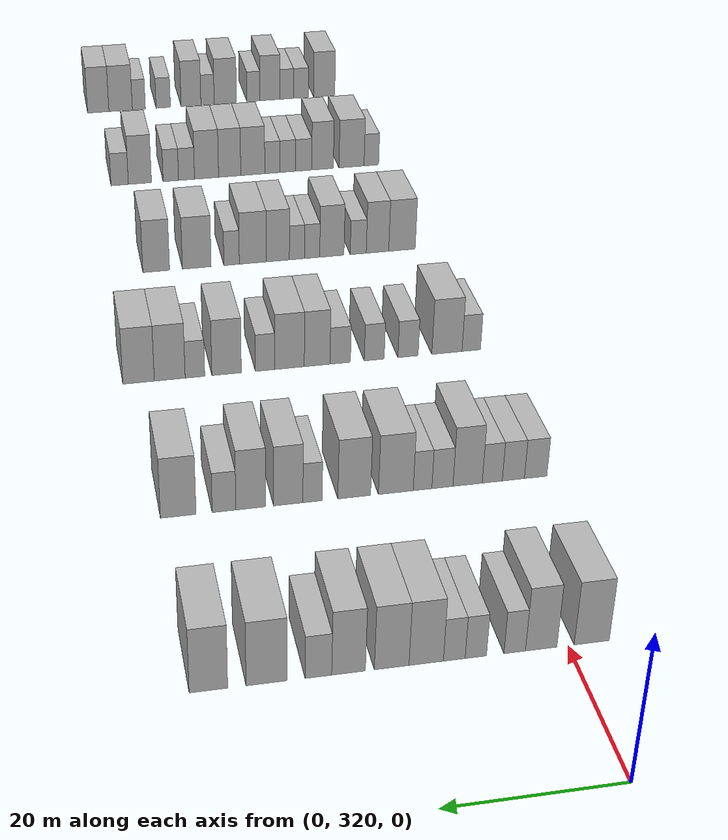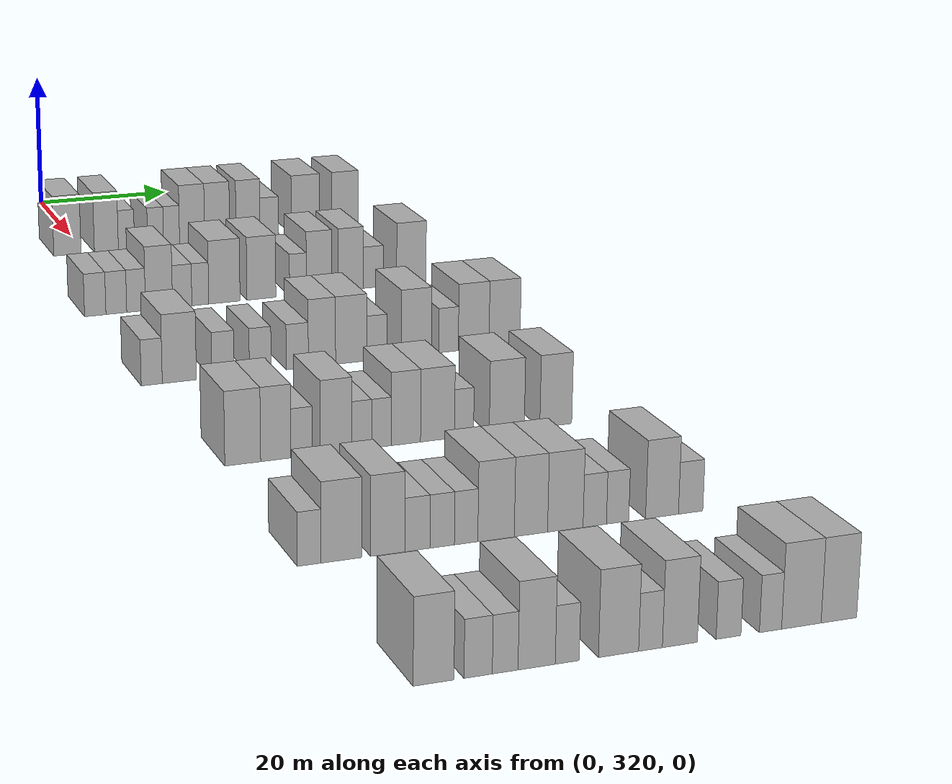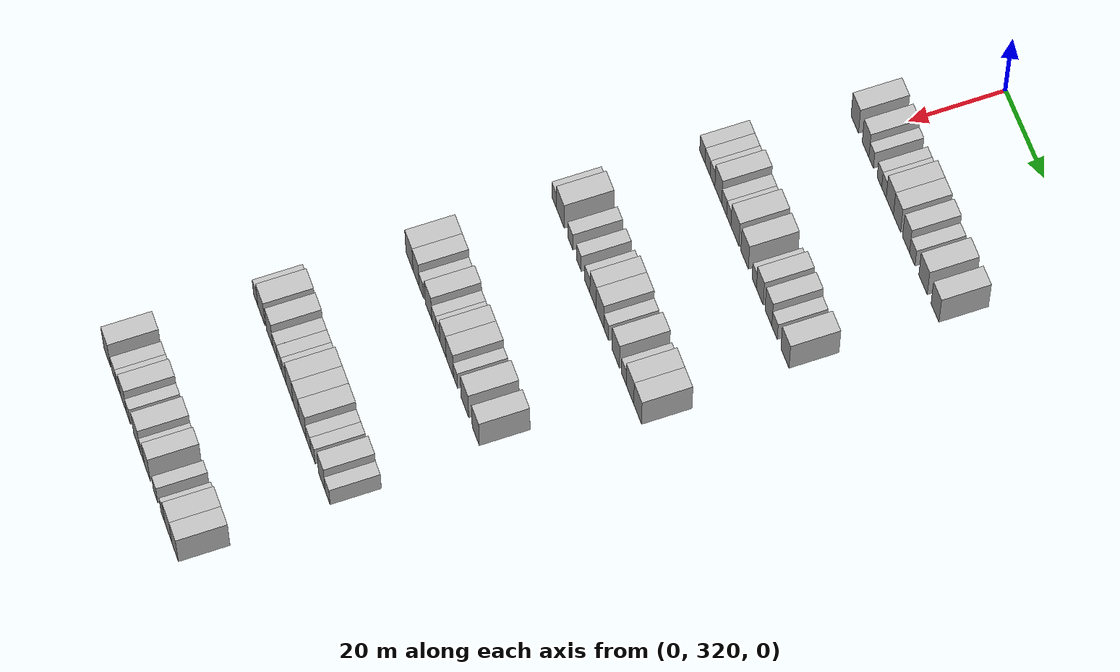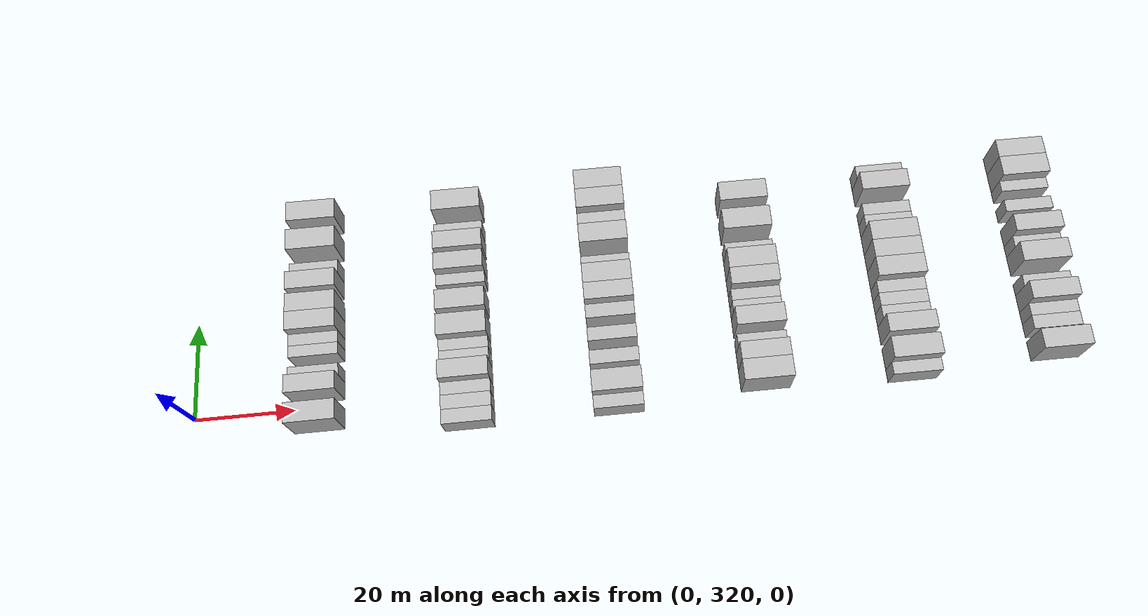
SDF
<sdf version="1.6">
 <world name="default">
  <model name="building_191">
   <static>1</static>
   <pose>25.0000 317.2593 0 0.000000 0.000000 0.000000</pose>
   <link name="link">
    <pose>0 0 4.50 0 0 0</pose>
    <collision name="collision"><geometry><box><size>10.0000 4.0689 9.0000</size></box></geometry></collision>
    <visual name="visual">
     <cast_shadows>0</cast_shadows>
     <geometry><box><size>10.0000 4.0689 9.0000</size></box></geometry>
     <material>
      <script>
       <uri>model://HANNAS_wall/materials/scripts</uri>
       <uri>model://HANNAS_wall/materials/textures</uri>
       <name>vrc/HANNAS_wall</name>
      </script>
     </material>
    </visual>
   </link>
  </model>
  <model name="building_192">
   <static>1</static>
   <pose>25.0000 323.1039 0 0.000000 0.000000 0.000000</pose>
   <link name="link">
    <pose>0 0 4.50 0 0 0</pose>
    <collision name="collision"><geometry><box><size>10.0000 3.6204 9.0000</size></box></geometry></collision>
    <visual name="visual">
     <cast_shadows>0</cast_shadows>
     <geometry><box><size>10.0000 3.6204 9.0000</size></box></geometry>
     <material>
      <script>
       <uri>model://HANNAS_wall/materials/scripts</uri>
       <uri>model://HANNAS_wall/materials/textures</uri>
       <name>vrc/HANNAS_wall</name>
      </script>
     </material>
    </visual>
   </link>
  </model>
  <model name="building_193">
   <static>1</static>
   <pose>25.0000 326.1413 0 0.000000 0.000000 0.000000</pose>
   <link name="link">
    <pose>0 0 3.00 0 0 0</pose>
    <collision name="collision"><geometry><box><size>10.0000 2.4543 6.0000</size></box></geometry></collision>
    <visual name="visual">
     <cast_shadows>0</cast_shadows>
     <geometry><box><size>10.0000 2.4543 6.0000</size></box></geometry>
     <material>
      <script>
       <uri>model://HANNAS_wall/materials/scripts</uri>
       <uri>model://HANNAS_wall/materials/textures</uri>
       <name>vrc/HANNAS_wall</name>
      </script>
     </material>
    </visual>
   </link>
  </model>
  <model name="building_194">
   <static>1</static>
   <pose>25.0000 330.5818 0 0.000000 0.000000 0.000000</pose>
   <link name="link">
    <pose>0 0 3.00 0 0 0</pose>
    <collision name="collision"><geometry><box><size>10.0000 2.4268 6.0000</size></box></geometry></collision>
    <visual name="visual">
     <cast_shadows>0</cast_shadows>
     <geometry><box><size>10.0000 2.4268 6.0000</size></box></geometry>
     <material>
      <script>
       <uri>model://HANNAS_wall/materials/scripts</uri>
       <uri>model://HANNAS_wall/materials/textures</uri>
       <name>vrc/HANNAS_wall</name>
      </script>
     </material>
    </visual>
   </link>
  </model>
  <model name="building_195">
   <static>1</static>
   <pose>25.0000 333.0260 0 0.000000 0.000000 0.000000</pose>
   <link name="link">
    <pose>0 0 3.00 0 0 0</pose>
    <collision name="collision"><geometry><box><size>10.0000 2.4615 6.0000</size></box></geometry></collision>
    <visual name="visual">
     <cast_shadows>0</cast_shadows>
     <geometry><box><size>10.0000 2.4615 6.0000</size></box></geometry>
     <material>
      <script>
       <uri>model://HANNAS_wall/materials/scripts</uri>
       <uri>model://HANNAS_wall/materials/textures</uri>
       <name>vrc/HANNAS_wall</name>
      </script>
     </material>
    </visual>
   </link>
  </model>
  <model name="building_196">
   <static>1</static>
   <pose>25.0000 336.1932 0 0.000000 0.000000 0.000000</pose>
   <link name="link">
    <pose>0 0 4.50 0 0 0</pose>
    <collision name="collision"><geometry><box><size>10.0000 3.8728 9.0000</size></box></geometry></collision>
    <visual name="visual">
     <cast_shadows>0</cast_shadows>
     <geometry><box><size>10.0000 3.8728 9.0000</size></box></geometry>
     <material>
      <script>
       <uri>model://HANNAS_wall/materials/scripts</uri>
       <uri>model://HANNAS_wall/materials/textures</uri>
       <name>vrc/HANNAS_wall</name>
      </script>
     </material>
    </visual>
   </link>
  </model>
  <model name="building_197">
   <static>1</static>
   <pose>25.0000 340.0708 0 0.000000 0.000000 0.000000</pose>
   <link name="link">
    <pose>0 0 4.50 0 0 0</pose>
    <collision name="collision"><geometry><box><size>10.0000 3.8825 9.0000</size></box></geometry></collision>
    <visual name="visual">
     <cast_shadows>0</cast_shadows>
     <geometry><box><size>10.0000 3.8825 9.0000</size></box></geometry>
     <material>
      <script>
       <uri>model://HANNAS_wall/materials/scripts</uri>
       <uri>model://HANNAS_wall/materials/textures</uri>
       <name>vrc/HANNAS_wall</name>
      </script>
     </material>
    </visual>
   </link>
  </model>
  <model name="building_198">
   <static>1</static>
   <pose>25.0000 344.8836 0 0.000000 0.000000 0.000000</pose>
   <link name="link">
    <pose>0 0 4.50 0 0 0</pose>
    <collision name="collision"><geometry><box><size>10.0000 3.7432 9.0000</size></box></geometry></collision>
    <visual name="visual">
     <cast_shadows>0</cast_shadows>
     <geometry><box><size>10.0000 3.7432 9.0000</size></box></geometry>
     <material>
      <script>
       <uri>model://HANNAS_wall/materials/scripts</uri>
       <uri>model://HANNAS_wall/materials/textures</uri>
       <name>vrc/HANNAS_wall</name>
      </script>
     </material>
    </visual>
   </link>
  </model>
  <model name="building_199">
   <static>1</static>
   <pose>25.0000 348.2216 0 0.000000 0.000000 0.000000</pose>
   <link name="link">
    <pose>0 0 3.00 0 0 0</pose>
    <collision name="collision"><geometry><box><size>10.0000 2.9327 6.0000</size></box></geometry></collision>
    <visual name="visual">
     <cast_shadows>0</cast_shadows>
     <geometry><box><size>10.0000 2.9327 6.0000</size></box></geometry>
     <material>
      <script>
       <uri>model://HANNAS_wall/materials/scripts</uri>
       <uri>model://HANNAS_wall/materials/textures</uri>
       <name>vrc/HANNAS_wall</name>
      </script>
     </material>
    </visual>
   </link>
  </model>
  <model name="building_200">
   <static>1</static>
   <pose>25.0000 353.9241 0 0.000000 0.000000 0.000000</pose>
   <link name="link">
    <pose>0 0 4.50 0 0 0</pose>
    <collision name="collision"><geometry><box><size>10.0000 4.4724 9.0000</size></box></geometry></collision>
    <visual name="visual">
     <cast_shadows>0</cast_shadows>
     <geometry><box><size>10.0000 4.4724 9.0000</size></box></geometry>
     <material>
      <script>
       <uri>model://HANNAS_wall/materials/scripts</uri>
       <uri>model://HANNAS_wall/materials/textures</uri>
       <name>vrc/HANNAS_wall</name>
      </script>
     </material>
    </visual>
   </link>
  </model>
  <model name="building_201">
   <static>1</static>
   <pose>25.0000 360.2449 0 0.000000 0.000000 0.000000</pose>
   <link name="link">
    <pose>0 0 4.50 0 0 0</pose>
    <collision name="collision"><geometry><box><size>10.0000 4.1690 9.0000</size></box></geometry></collision>
    <visual name="visual">
     <cast_shadows>0</cast_shadows>
     <geometry><box><size>10.0000 4.1690 9.0000</size></box></geometry>
     <material>
      <script>
       <uri>model://HANNAS_wall/materials/scripts</uri>
       <uri>model://HANNAS_wall/materials/textures</uri>
       <name>vrc/HANNAS_wall</name>
      </script>
     </material>
    </visual>
   </link>
  </model>
  <model name="building_416">
   <static>1</static>
   <pose>55.0000 314.2554 0 0.000000 0.000000 0.000000</pose>
   <link name="link">
    <pose>0 0 3.00 0 0 0</pose>
    <collision name="collision"><geometry><box><size>10.0000 2.9622 6.0000</size></box></geometry></collision>
    <visual name="visual">
     <cast_shadows>0</cast_shadows>
     <geometry><box><size>10.0000 2.9622 6.0000</size></box></geometry>
     <material>
      <script>
       <uri>model://HANNAS_wall/materials/scripts</uri>
       <uri>model://HANNAS_wall/materials/textures</uri>
       <name>vrc/HANNAS_wall</name>
      </script>
     </material>
    </visual>
   </link>
  </model>
  <model name="building_417">
   <static>1</static>
   <pose>55.0000 317.1881 0 0.000000 0.000000 0.000000</pose>
   <link name="link">
    <pose>0 0 3.00 0 0 0</pose>
    <collision name="collision"><geometry><box><size>10.0000 2.9033 6.0000</size></box></geometry></collision>
    <visual name="visual">
     <cast_shadows>0</cast_shadows>
     <geometry><box><size>10.0000 2.9033 6.0000</size></box></geometry>
     <material>
      <script>
       <uri>model://HANNAS_wall/materials/scripts</uri>
       <uri>model://HANNAS_wall/materials/textures</uri>
       <name>vrc/HANNAS_wall</name>
      </script>
     </material>
    </visual>
   </link>
  </model>
  <model name="building_418">
   <static>1</static>
   <pose>55.0000 319.9535 0 0.000000 0.000000 0.000000</pose>
   <link name="link">
    <pose>0 0 3.00 0 0 0</pose>
    <collision name="collision"><geometry><box><size>10.0000 2.6275 6.0000</size></box></geometry></collision>
    <visual name="visual">
     <cast_shadows>0</cast_shadows>
     <geometry><box><size>10.0000 2.6275 6.0000</size></box></geometry>
     <material>
      <script>
       <uri>model://HANNAS_wall/materials/scripts</uri>
       <uri>model://HANNAS_wall/materials/textures</uri>
       <name>vrc/HANNAS_wall</name>
      </script>
     </material>
    </visual>
   </link>
  </model>
  <model name="building_419">
   <static>1</static>
   <pose>55.0000 323.1736 0 0.000000 0.000000 0.000000</pose>
   <link name="link">
    <pose>0 0 4.50 0 0 0</pose>
    <collision name="collision"><geometry><box><size>10.0000 3.8126 9.0000</size></box></geometry></collision>
    <visual name="visual">
     <cast_shadows>0</cast_shadows>
     <geometry><box><size>10.0000 3.8126 9.0000</size></box></geometry>
     <material>
      <script>
       <uri>model://HANNAS_wall/materials/scripts</uri>
       <uri>model://HANNAS_wall/materials/textures</uri>
       <name>vrc/HANNAS_wall</name>
      </script>
     </material>
    </visual>
   </link>
  </model>
  <model name="building_420">
   <static>1</static>
   <pose>55.0000 326.4484 0 0.000000 0.000000 0.000000</pose>
   <link name="link">
    <pose>0 0 3.00 0 0 0</pose>
    <collision name="collision"><geometry><box><size>10.0000 2.7370 6.0000</size></box></geometry></collision>
    <visual name="visual">
     <cast_shadows>0</cast_shadows>
     <geometry><box><size>10.0000 2.7370 6.0000</size></box></geometry>
     <material>
      <script>
       <uri>model://HANNAS_wall/materials/scripts</uri>
       <uri>model://HANNAS_wall/materials/textures</uri>
       <name>vrc/HANNAS_wall</name>
      </script>
     </material>
    </visual>
   </link>
  </model>
  <model name="building_421">
   <static>1</static>
   <pose>55.0000 329.0197 0 0.000000 0.000000 0.000000</pose>
   <link name="link">
    <pose>0 0 3.00 0 0 0</pose>
    <collision name="collision"><geometry><box><size>10.0000 2.4057 6.0000</size></box></geometry></collision>
    <visual name="visual">
     <cast_shadows>0</cast_shadows>
     <geometry><box><size>10.0000 2.4057 6.0000</size></box></geometry>
     <material>
      <script>
       <uri>model://HANNAS_wall/materials/scripts</uri>
       <uri>model://HANNAS_wall/materials/textures</uri>
       <name>vrc/HANNAS_wall</name>
      </script>
     </material>
    </visual>
   </link>
  </model>
  <model name="building_422">
   <static>1</static>
   <pose>55.0000 332.4609 0 0.000000 0.000000 0.000000</pose>
   <link name="link">
    <pose>0 0 4.50 0 0 0</pose>
    <collision name="collision"><geometry><box><size>10.0000 4.4768 9.0000</size></box></geometry></collision>
    <visual name="visual">
     <cast_shadows>0</cast_shadows>
     <geometry><box><size>10.0000 4.4768 9.0000</size></box></geometry>
     <material>
      <script>
       <uri>model://HANNAS_wall/materials/scripts</uri>
       <uri>model://HANNAS_wall/materials/textures</uri>
       <name>vrc/HANNAS_wall</name>
      </script>
     </material>
    </visual>
   </link>
  </model>
  <model name="building_423">
   <static>1</static>
   <pose>55.0000 337.7897 0 0.000000 0.000000 0.000000</pose>
   <link name="link">
    <pose>0 0 4.50 0 0 0</pose>
    <collision name="collision"><geometry><box><size>10.0000 4.1807 9.0000</size></box></geometry></collision>
    <visual name="visual">
     <cast_shadows>0</cast_shadows>
     <geometry><box><size>10.0000 4.1807 9.0000</size></box></geometry>
     <material>
      <script>
       <uri>model://HANNAS_wall/materials/scripts</uri>
       <uri>model://HANNAS_wall/materials/textures</uri>
       <name>vrc/HANNAS_wall</name>
      </script>
     </material>
    </visual>
   </link>
  </model>
  <model name="building_424">
   <static>1</static>
   <pose>55.0000 343.1002 0 0.000000 0.000000 0.000000</pose>
   <link name="link">
    <pose>0 0 3.00 0 0 0</pose>
    <collision name="collision"><geometry><box><size>10.0000 2.4403 6.0000</size></box></geometry></collision>
    <visual name="visual">
     <cast_shadows>0</cast_shadows>
     <geometry><box><size>10.0000 2.4403 6.0000</size></box></geometry>
     <material>
      <script>
       <uri>model://HANNAS_wall/materials/scripts</uri>
       <uri>model://HANNAS_wall/materials/textures</uri>
       <name>vrc/HANNAS_wall</name>
      </script>
     </material>
    </visual>
   </link>
  </model>
  <model name="building_425">
   <static>1</static>
   <pose>55.0000 346.1621 0 0.000000 0.000000 0.000000</pose>
   <link name="link">
    <pose>0 0 4.50 0 0 0</pose>
    <collision name="collision"><geometry><box><size>10.0000 3.6836 9.0000</size></box></geometry></collision>
    <visual name="visual">
     <cast_shadows>0</cast_shadows>
     <geometry><box><size>10.0000 3.6836 9.0000</size></box></geometry>
     <material>
      <script>
       <uri>model://HANNAS_wall/materials/scripts</uri>
       <uri>model://HANNAS_wall/materials/textures</uri>
       <name>vrc/HANNAS_wall</name>
      </script>
     </material>
    </visual>
   </link>
  </model>
  <model name="building_426">
   <static>1</static>
   <pose>55.0000 350.8682 0 0.000000 0.000000 0.000000</pose>
   <link name="link">
    <pose>0 0 4.50 0 0 0</pose>
    <collision name="collision"><geometry><box><size>10.0000 3.7286 9.0000</size></box></geometry></collision>
    <visual name="visual">
     <cast_shadows>0</cast_shadows>
     <geometry><box><size>10.0000 3.7286 9.0000</size></box></geometry>
     <material>
      <script>
       <uri>model://HANNAS_wall/materials/scripts</uri>
       <uri>model://HANNAS_wall/materials/textures</uri>
       <name>vrc/HANNAS_wall</name>
      </script>
     </material>
    </visual>
   </link>
  </model>
  <model name="building_427">
   <static>1</static>
   <pose>55.0000 354.2079 0 0.000000 0.000000 0.000000</pose>
   <link name="link">
    <pose>0 0 3.00 0 0 0</pose>
    <collision name="collision"><geometry><box><size>10.0000 2.9508 6.0000</size></box></geometry></collision>
    <visual name="visual">
     <cast_shadows>0</cast_shadows>
     <geometry><box><size>10.0000 2.9508 6.0000</size></box></geometry>
     <material>
      <script>
       <uri>model://HANNAS_wall/materials/scripts</uri>
       <uri>model://HANNAS_wall/materials/textures</uri>
       <name>vrc/HANNAS_wall</name>
      </script>
     </material>
    </visual>
   </link>
  </model>
  <model name="building_428">
   <static>1</static>
   <pose>55.0000 359.8865 0 0.000000 0.000000 0.000000</pose>
   <link name="link">
    <pose>0 0 4.50 0 0 0</pose>
    <collision name="collision"><geometry><box><size>10.0000 4.4065 9.0000</size></box></geometry></collision>
    <visual name="visual">
     <cast_shadows>0</cast_shadows>
     <geometry><box><size>10.0000 4.4065 9.0000</size></box></geometry>
     <material>
      <script>
       <uri>model://HANNAS_wall/materials/scripts</uri>
       <uri>model://HANNAS_wall/materials/textures</uri>
       <name>vrc/HANNAS_wall</name>
      </script>
     </material>
    </visual>
   </link>
  </model>
  <model name="building_643">
   <static>1</static>
   <pose>85.0000 314.3011 0 0.000000 0.000000 0.000000</pose>
   <link name="link">
    <pose>0 0 3.00 0 0 0</pose>
    <collision name="collision"><geometry><box><size>10.0000 2.7082 6.0000</size></box></geometry></collision>
    <visual name="visual">
     <cast_shadows>0</cast_shadows>
     <geometry><box><size>10.0000 2.7082 6.0000</size></box></geometry>
     <material>
      <script>
       <uri>model://HANNAS_wall/materials/scripts</uri>
       <uri>model://HANNAS_wall/materials/textures</uri>
       <name>vrc/HANNAS_wall</name>
      </script>
     </material>
    </visual>
   </link>
  </model>
  <model name="building_644">
   <static>1</static>
   <pose>85.0000 317.8653 0 0.000000 0.000000 0.000000</pose>
   <link name="link">
    <pose>0 0 4.50 0 0 0</pose>
    <collision name="collision"><geometry><box><size>10.0000 4.4202 9.0000</size></box></geometry></collision>
    <visual name="visual">
     <cast_shadows>0</cast_shadows>
     <geometry><box><size>10.0000 4.4202 9.0000</size></box></geometry>
     <material>
      <script>
       <uri>model://HANNAS_wall/materials/scripts</uri>
       <uri>model://HANNAS_wall/materials/textures</uri>
       <name>vrc/HANNAS_wall</name>
      </script>
     </material>
    </visual>
   </link>
  </model>
  <model name="building_645">
   <static>1</static>
   <pose>85.0000 323.5443 0 0.000000 0.000000 0.000000</pose>
   <link name="link">
    <pose>0 0 3.00 0 0 0</pose>
    <collision name="collision"><geometry><box><size>10.0000 2.9379 6.0000</size></box></geometry></collision>
    <visual name="visual">
     <cast_shadows>0</cast_shadows>
     <geometry><box><size>10.0000 2.9379 6.0000</size></box></geometry>
     <material>
      <script>
       <uri>model://HANNAS_wall/materials/scripts</uri>
       <uri>model://HANNAS_wall/materials/textures</uri>
       <name>vrc/HANNAS_wall</name>
      </script>
     </material>
    </visual>
   </link>
  </model>
  <model name="building_646">
   <static>1</static>
   <pose>85.0000 328.4490 0 0.000000 0.000000 0.000000</pose>
   <link name="link">
    <pose>0 0 3.00 0 0 0</pose>
    <collision name="collision"><geometry><box><size>10.0000 2.8715 6.0000</size></box></geometry></collision>
    <visual name="visual">
     <cast_shadows>0</cast_shadows>
     <geometry><box><size>10.0000 2.8715 6.0000</size></box></geometry>
     <material>
      <script>
       <uri>model://HANNAS_wall/materials/scripts</uri>
       <uri>model://HANNAS_wall/materials/textures</uri>
       <name>vrc/HANNAS_wall</name>
      </script>
     </material>
    </visual>
   </link>
  </model>
  <model name="building_647">
   <static>1</static>
   <pose>85.0000 333.3624 0 0.000000 0.000000 0.000000</pose>
   <link name="link">
    <pose>0 0 3.00 0 0 0</pose>
    <collision name="collision"><geometry><box><size>10.0000 2.9554 6.0000</size></box></geometry></collision>
    <visual name="visual">
     <cast_shadows>0</cast_shadows>
     <geometry><box><size>10.0000 2.9554 6.0000</size></box></geometry>
     <material>
      <script>
       <uri>model://HANNAS_wall/materials/scripts</uri>
       <uri>model://HANNAS_wall/materials/textures</uri>
       <name>vrc/HANNAS_wall</name>
      </script>
     </material>
    </visual>
   </link>
  </model>
  <model name="building_648">
   <static>1</static>
   <pose>85.0000 336.6692 0 0.000000 0.000000 0.000000</pose>
   <link name="link">
    <pose>0 0 4.50 0 0 0</pose>
    <collision name="collision"><geometry><box><size>10.0000 3.6582 9.0000</size></box></geometry></collision>
    <visual name="visual">
     <cast_shadows>0</cast_shadows>
     <geometry><box><size>10.0000 3.6582 9.0000</size></box></geometry>
     <material>
      <script>
       <uri>model://HANNAS_wall/materials/scripts</uri>
       <uri>model://HANNAS_wall/materials/textures</uri>
       <name>vrc/HANNAS_wall</name>
      </script>
     </material>
    </visual>
   </link>
  </model>
  <model name="building_649">
   <static>1</static>
   <pose>85.0000 340.5995 0 0.000000 0.000000 0.000000</pose>
   <link name="link">
    <pose>0 0 4.50 0 0 0</pose>
    <collision name="collision"><geometry><box><size>10.0000 4.2025 9.0000</size></box></geometry></collision>
    <visual name="visual">
     <cast_shadows>0</cast_shadows>
     <geometry><box><size>10.0000 4.2025 9.0000</size></box></geometry>
     <material>
      <script>
       <uri>model://HANNAS_wall/materials/scripts</uri>
       <uri>model://HANNAS_wall/materials/textures</uri>
       <name>vrc/HANNAS_wall</name>
      </script>
     </material>
    </visual>
   </link>
  </model>
  <model name="building_650">
   <static>1</static>
   <pose>85.0000 344.0637 0 0.000000 0.000000 0.000000</pose>
   <link name="link">
    <pose>0 0 3.00 0 0 0</pose>
    <collision name="collision"><geometry><box><size>10.0000 2.7259 6.0000</size></box></geometry></collision>
    <visual name="visual">
     <cast_shadows>0</cast_shadows>
     <geometry><box><size>10.0000 2.7259 6.0000</size></box></geometry>
     <material>
      <script>
       <uri>model://HANNAS_wall/materials/scripts</uri>
       <uri>model://HANNAS_wall/materials/textures</uri>
       <name>vrc/HANNAS_wall</name>
      </script>
     </material>
    </visual>
   </link>
  </model>
  <model name="building_651">
   <static>1</static>
   <pose>85.0000 349.4962 0 0.000000 0.000000 0.000000</pose>
   <link name="link">
    <pose>0 0 4.50 0 0 0</pose>
    <collision name="collision"><geometry><box><size>10.0000 4.1391 9.0000</size></box></geometry></collision>
    <visual name="visual">
     <cast_shadows>0</cast_shadows>
     <geometry><box><size>10.0000 4.1391 9.0000</size></box></geometry>
     <material>
      <script>
       <uri>model://HANNAS_wall/materials/scripts</uri>
       <uri>model://HANNAS_wall/materials/textures</uri>
       <name>vrc/HANNAS_wall</name>
      </script>
     </material>
    </visual>
   </link>
  </model>
  <model name="building_652">
   <static>1</static>
   <pose>85.0000 353.9342 0 0.000000 0.000000 0.000000</pose>
   <link name="link">
    <pose>0 0 3.00 0 0 0</pose>
    <collision name="collision"><geometry><box><size>10.0000 2.7370 6.0000</size></box></geometry></collision>
    <visual name="visual">
     <cast_shadows>0</cast_shadows>
     <geometry><box><size>10.0000 2.7370 6.0000</size></box></geometry>
     <material>
      <script>
       <uri>model://HANNAS_wall/materials/scripts</uri>
       <uri>model://HANNAS_wall/materials/textures</uri>
       <name>vrc/HANNAS_wall</name>
      </script>
     </material>
    </visual>
   </link>
  </model>
  <model name="building_653">
   <static>1</static>
   <pose>85.0000 357.4487 0 0.000000 0.000000 0.000000</pose>
   <link name="link">
    <pose>0 0 4.50 0 0 0</pose>
    <collision name="collision"><geometry><box><size>10.0000 4.2918 9.0000</size></box></geometry></collision>
    <visual name="visual">
     <cast_shadows>0</cast_shadows>
     <geometry><box><size>10.0000 4.2918 9.0000</size></box></geometry>
     <material>
      <script>
       <uri>model://HANNAS_wall/materials/scripts</uri>
       <uri>model://HANNAS_wall/materials/textures</uri>
       <name>vrc/HANNAS_wall</name>
      </script>
     </material>
    </visual>
   </link>
  </model>
  <model name="building_654">
   <static>1</static>
   <pose>85.0000 361.7770 0 0.000000 0.000000 0.000000</pose>
   <link name="link">
    <pose>0 0 4.50 0 0 0</pose>
    <collision name="collision"><geometry><box><size>10.0000 4.3648 9.0000</size></box></geometry></collision>
    <visual name="visual">
     <cast_shadows>0</cast_shadows>
     <geometry><box><size>10.0000 4.3648 9.0000</size></box></geometry>
     <material>
      <script>
       <uri>model://HANNAS_wall/materials/scripts</uri>
       <uri>model://HANNAS_wall/materials/textures</uri>
       <name>vrc/HANNAS_wall</name>
      </script>
     </material>
    </visual>
   </link>
  </model>
  <model name="building_872">
   <static>1</static>
   <pose>115.0000 317.1850 0 0.000000 0.000000 0.000000</pose>
   <link name="link">
    <pose>0 0 4.50 0 0 0</pose>
    <collision name="collision"><geometry><box><size>10.0000 4.2740 9.0000</size></box></geometry></collision>
    <visual name="visual">
     <cast_shadows>0</cast_shadows>
     <geometry><box><size>10.0000 4.2740 9.0000</size></box></geometry>
     <material>
      <script>
       <uri>model://HANNAS_wall/materials/scripts</uri>
       <uri>model://HANNAS_wall/materials/textures</uri>
       <name>vrc/HANNAS_wall</name>
      </script>
     </material>
    </visual>
   </link>
  </model>
  <model name="building_873">
   <static>1</static>
   <pose>115.0000 321.1347 0 0.000000 0.000000 0.000000</pose>
   <link name="link">
    <pose>0 0 4.50 0 0 0</pose>
    <collision name="collision"><geometry><box><size>10.0000 3.6255 9.0000</size></box></geometry></collision>
    <visual name="visual">
     <cast_shadows>0</cast_shadows>
     <geometry><box><size>10.0000 3.6255 9.0000</size></box></geometry>
     <material>
      <script>
       <uri>model://HANNAS_wall/materials/scripts</uri>
       <uri>model://HANNAS_wall/materials/textures</uri>
       <name>vrc/HANNAS_wall</name>
      </script>
     </material>
    </visual>
   </link>
  </model>
  <model name="building_874">
   <static>1</static>
   <pose>115.0000 324.2326 0 0.000000 0.000000 0.000000</pose>
   <link name="link">
    <pose>0 0 3.00 0 0 0</pose>
    <collision name="collision"><geometry><box><size>10.0000 2.5702 6.0000</size></box></geometry></collision>
    <visual name="visual">
     <cast_shadows>0</cast_shadows>
     <geometry><box><size>10.0000 2.5702 6.0000</size></box></geometry>
     <material>
      <script>
       <uri>model://HANNAS_wall/materials/scripts</uri>
       <uri>model://HANNAS_wall/materials/textures</uri>
       <name>vrc/HANNAS_wall</name>
      </script>
     </material>
    </visual>
   </link>
  </model>
  <model name="building_875">
   <static>1</static>
   <pose>115.0000 328.4561 0 0.000000 0.000000 0.000000</pose>
   <link name="link">
    <pose>0 0 4.50 0 0 0</pose>
    <collision name="collision"><geometry><box><size>10.0000 3.8766 9.0000</size></box></geometry></collision>
    <visual name="visual">
     <cast_shadows>0</cast_shadows>
     <geometry><box><size>10.0000 3.8766 9.0000</size></box></geometry>
     <material>
      <script>
       <uri>model://HANNAS_wall/materials/scripts</uri>
       <uri>model://HANNAS_wall/materials/textures</uri>
       <name>vrc/HANNAS_wall</name>
      </script>
     </material>
    </visual>
   </link>
  </model>
  <model name="building_876">
   <static>1</static>
   <pose>115.0000 331.6000 0 0.000000 0.000000 0.000000</pose>
   <link name="link">
    <pose>0 0 3.00 0 0 0</pose>
    <collision name="collision"><geometry><box><size>10.0000 2.4112 6.0000</size></box></geometry></collision>
    <visual name="visual">
     <cast_shadows>0</cast_shadows>
     <geometry><box><size>10.0000 2.4112 6.0000</size></box></geometry>
     <material>
      <script>
       <uri>model://HANNAS_wall/materials/scripts</uri>
       <uri>model://HANNAS_wall/materials/textures</uri>
       <name>vrc/HANNAS_wall</name>
      </script>
     </material>
    </visual>
   </link>
  </model>
  <model name="building_877">
   <static>1</static>
   <pose>115.0000 334.0141 0 0.000000 0.000000 0.000000</pose>
   <link name="link">
    <pose>0 0 3.00 0 0 0</pose>
    <collision name="collision"><geometry><box><size>10.0000 2.4171 6.0000</size></box></geometry></collision>
    <visual name="visual">
     <cast_shadows>0</cast_shadows>
     <geometry><box><size>10.0000 2.4171 6.0000</size></box></geometry>
     <material>
      <script>
       <uri>model://HANNAS_wall/materials/scripts</uri>
       <uri>model://HANNAS_wall/materials/textures</uri>
       <name>vrc/HANNAS_wall</name>
      </script>
     </material>
    </visual>
   </link>
  </model>
  <model name="building_878">
   <static>1</static>
   <pose>115.0000 337.0443 0 0.000000 0.000000 0.000000</pose>
   <link name="link">
    <pose>0 0 4.50 0 0 0</pose>
    <collision name="collision"><geometry><box><size>10.0000 3.6433 9.0000</size></box></geometry></collision>
    <visual name="visual">
     <cast_shadows>0</cast_shadows>
     <geometry><box><size>10.0000 3.6433 9.0000</size></box></geometry>
     <material>
      <script>
       <uri>model://HANNAS_wall/materials/scripts</uri>
       <uri>model://HANNAS_wall/materials/textures</uri>
       <name>vrc/HANNAS_wall</name>
      </script>
     </material>
    </visual>
   </link>
  </model>
  <model name="building_879">
   <static>1</static>
   <pose>115.0000 340.9927 0 0.000000 0.000000 0.000000</pose>
   <link name="link">
    <pose>0 0 4.50 0 0 0</pose>
    <collision name="collision"><geometry><box><size>10.0000 4.2534 9.0000</size></box></geometry></collision>
    <visual name="visual">
     <cast_shadows>0</cast_shadows>
     <geometry><box><size>10.0000 4.2534 9.0000</size></box></geometry>
     <material>
      <script>
       <uri>model://HANNAS_wall/materials/scripts</uri>
       <uri>model://HANNAS_wall/materials/textures</uri>
       <name>vrc/HANNAS_wall</name>
      </script>
     </material>
    </visual>
   </link>
  </model>
  <model name="building_880">
   <static>1</static>
   <pose>115.0000 344.3248 0 0.000000 0.000000 0.000000</pose>
   <link name="link">
    <pose>0 0 3.00 0 0 0</pose>
    <collision name="collision"><geometry><box><size>10.0000 2.4109 6.0000</size></box></geometry></collision>
    <visual name="visual">
     <cast_shadows>0</cast_shadows>
     <geometry><box><size>10.0000 2.4109 6.0000</size></box></geometry>
     <material>
      <script>
       <uri>model://HANNAS_wall/materials/scripts</uri>
       <uri>model://HANNAS_wall/materials/textures</uri>
       <name>vrc/HANNAS_wall</name>
      </script>
     </material>
    </visual>
   </link>
  </model>
  <model name="building_881">
   <static>1</static>
   <pose>115.0000 349.7651 0 0.000000 0.000000 0.000000</pose>
   <link name="link">
    <pose>0 0 4.50 0 0 0</pose>
    <collision name="collision"><geometry><box><size>10.0000 4.4696 9.0000</size></box></geometry></collision>
    <visual name="visual">
     <cast_shadows>0</cast_shadows>
     <geometry><box><size>10.0000 4.4696 9.0000</size></box></geometry>
     <material>
      <script>
       <uri>model://HANNAS_wall/materials/scripts</uri>
       <uri>model://HANNAS_wall/materials/textures</uri>
       <name>vrc/HANNAS_wall</name>
      </script>
     </material>
    </visual>
   </link>
  </model>
  <model name="building_882">
   <static>1</static>
   <pose>115.0000 356.0647 0 0.000000 0.000000 0.000000</pose>
   <link name="link">
    <pose>0 0 4.50 0 0 0</pose>
    <collision name="collision"><geometry><box><size>10.0000 4.1297 9.0000</size></box></geometry></collision>
    <visual name="visual">
     <cast_shadows>0</cast_shadows>
     <geometry><box><size>10.0000 4.1297 9.0000</size></box></geometry>
     <material>
      <script>
       <uri>model://HANNAS_wall/materials/scripts</uri>
       <uri>model://HANNAS_wall/materials/textures</uri>
       <name>vrc/HANNAS_wall</name>
      </script>
     </material>
    </visual>
   </link>
  </model>
  <model name="building_1109">
   <static>1</static>
   <pose>145.0000 315.3830 0 0.000000 0.000000 0.000000</pose>
   <link name="link">
    <pose>0 0 3.00 0 0 0</pose>
    <collision name="collision"><geometry><box><size>10.0000 2.5791 6.0000</size></box></geometry></collision>
    <visual name="visual">
     <cast_shadows>0</cast_shadows>
     <geometry><box><size>10.0000 2.5791 6.0000</size></box></geometry>
     <material>
      <script>
       <uri>model://HANNAS_wall/materials/scripts</uri>
       <uri>model://HANNAS_wall/materials/textures</uri>
       <name>vrc/HANNAS_wall</name>
      </script>
     </material>
    </visual>
   </link>
  </model>
  <model name="building_1110">
   <static>1</static>
   <pose>145.0000 318.8904 0 0.000000 0.000000 0.000000</pose>
   <link name="link">
    <pose>0 0 4.50 0 0 0</pose>
    <collision name="collision"><geometry><box><size>10.0000 4.4356 9.0000</size></box></geometry></collision>
    <visual name="visual">
     <cast_shadows>0</cast_shadows>
     <geometry><box><size>10.0000 4.4356 9.0000</size></box></geometry>
     <material>
      <script>
       <uri>model://HANNAS_wall/materials/scripts</uri>
       <uri>model://HANNAS_wall/materials/textures</uri>
       <name>vrc/HANNAS_wall</name>
      </script>
     </material>
    </visual>
   </link>
  </model>
  <model name="building_1111">
   <static>1</static>
   <pose>145.0000 324.0052 0 0.000000 0.000000 0.000000</pose>
   <link name="link">
    <pose>0 0 4.50 0 0 0</pose>
    <collision name="collision"><geometry><box><size>10.0000 3.7940 9.0000</size></box></geometry></collision>
    <visual name="visual">
     <cast_shadows>0</cast_shadows>
     <geometry><box><size>10.0000 3.7940 9.0000</size></box></geometry>
     <material>
      <script>
       <uri>model://HANNAS_wall/materials/scripts</uri>
       <uri>model://HANNAS_wall/materials/textures</uri>
       <name>vrc/HANNAS_wall</name>
      </script>
     </material>
    </visual>
   </link>
  </model>
  <model name="building_1112">
   <static>1</static>
   <pose>145.0000 327.3074 0 0.000000 0.000000 0.000000</pose>
   <link name="link">
    <pose>0 0 3.00 0 0 0</pose>
    <collision name="collision"><geometry><box><size>10.0000 2.8105 6.0000</size></box></geometry></collision>
    <visual name="visual">
     <cast_shadows>0</cast_shadows>
     <geometry><box><size>10.0000 2.8105 6.0000</size></box></geometry>
     <material>
      <script>
       <uri>model://HANNAS_wall/materials/scripts</uri>
       <uri>model://HANNAS_wall/materials/textures</uri>
       <name>vrc/HANNAS_wall</name>
      </script>
     </material>
    </visual>
   </link>
  </model>
  <model name="building_1113">
   <static>1</static>
   <pose>145.0000 330.0895 0 0.000000 0.000000 0.000000</pose>
   <link name="link">
    <pose>0 0 3.00 0 0 0</pose>
    <collision name="collision"><geometry><box><size>10.0000 2.7538 6.0000</size></box></geometry></collision>
    <visual name="visual">
     <cast_shadows>0</cast_shadows>
     <geometry><box><size>10.0000 2.7538 6.0000</size></box></geometry>
     <material>
      <script>
       <uri>model://HANNAS_wall/materials/scripts</uri>
       <uri>model://HANNAS_wall/materials/textures</uri>
       <name>vrc/HANNAS_wall</name>
      </script>
     </material>
    </visual>
   </link>
  </model>
  <model name="building_1114">
   <static>1</static>
   <pose>145.0000 332.7911 0 0.000000 0.000000 0.000000</pose>
   <link name="link">
    <pose>0 0 3.00 0 0 0</pose>
    <collision name="collision"><geometry><box><size>10.0000 2.6493 6.0000</size></box></geometry></collision>
    <visual name="visual">
     <cast_shadows>0</cast_shadows>
     <geometry><box><size>10.0000 2.6493 6.0000</size></box></geometry>
     <material>
      <script>
       <uri>model://HANNAS_wall/materials/scripts</uri>
       <uri>model://HANNAS_wall/materials/textures</uri>
       <name>vrc/HANNAS_wall</name>
      </script>
     </material>
    </visual>
   </link>
  </model>
  <model name="building_1115">
   <static>1</static>
   <pose>145.0000 336.1979 0 0.000000 0.000000 0.000000</pose>
   <link name="link">
    <pose>0 0 4.50 0 0 0</pose>
    <collision name="collision"><geometry><box><size>10.0000 4.1644 9.0000</size></box></geometry></collision>
    <visual name="visual">
     <cast_shadows>0</cast_shadows>
     <geometry><box><size>10.0000 4.1644 9.0000</size></box></geometry>
     <material>
      <script>
       <uri>model://HANNAS_wall/materials/scripts</uri>
       <uri>model://HANNAS_wall/materials/textures</uri>
       <name>vrc/HANNAS_wall</name>
      </script>
     </material>
    </visual>
   </link>
  </model>
  <model name="building_1116">
   <static>1</static>
   <pose>145.0000 340.1989 0 0.000000 0.000000 0.000000</pose>
   <link name="link">
    <pose>0 0 4.50 0 0 0</pose>
    <collision name="collision"><geometry><box><size>10.0000 3.8376 9.0000</size></box></geometry></collision>
    <visual name="visual">
     <cast_shadows>0</cast_shadows>
     <geometry><box><size>10.0000 3.8376 9.0000</size></box></geometry>
     <material>
      <script>
       <uri>model://HANNAS_wall/materials/scripts</uri>
       <uri>model://HANNAS_wall/materials/textures</uri>
       <name>vrc/HANNAS_wall</name>
      </script>
     </material>
    </visual>
   </link>
  </model>
  <model name="building_1117">
   <static>1</static>
   <pose>145.0000 344.1839 0 0.000000 0.000000 0.000000</pose>
   <link name="link">
    <pose>0 0 4.50 0 0 0</pose>
    <collision name="collision"><geometry><box><size>10.0000 4.1323 9.0000</size></box></geometry></collision>
    <visual name="visual">
     <cast_shadows>0</cast_shadows>
     <geometry><box><size>10.0000 4.1323 9.0000</size></box></geometry>
     <material>
      <script>
       <uri>model://HANNAS_wall/materials/scripts</uri>
       <uri>model://HANNAS_wall/materials/textures</uri>
       <name>vrc/HANNAS_wall</name>
      </script>
     </material>
    </visual>
   </link>
  </model>
  <model name="building_1118">
   <static>1</static>
   <pose>145.0000 347.6173 0 0.000000 0.000000 0.000000</pose>
   <link name="link">
    <pose>0 0 3.00 0 0 0</pose>
    <collision name="collision"><geometry><box><size>10.0000 2.7346 6.0000</size></box></geometry></collision>
    <visual name="visual">
     <cast_shadows>0</cast_shadows>
     <geometry><box><size>10.0000 2.7346 6.0000</size></box></geometry>
     <material>
      <script>
       <uri>model://HANNAS_wall/materials/scripts</uri>
       <uri>model://HANNAS_wall/materials/textures</uri>
       <name>vrc/HANNAS_wall</name>
      </script>
     </material>
    </visual>
   </link>
  </model>
  <model name="building_1119">
   <static>1</static>
   <pose>145.0000 350.3007 0 0.000000 0.000000 0.000000</pose>
   <link name="link">
    <pose>0 0 3.00 0 0 0</pose>
    <collision name="collision"><geometry><box><size>10.0000 2.6321 6.0000</size></box></geometry></collision>
    <visual name="visual">
     <cast_shadows>0</cast_shadows>
     <geometry><box><size>10.0000 2.6321 6.0000</size></box></geometry>
     <material>
      <script>
       <uri>model://HANNAS_wall/materials/scripts</uri>
       <uri>model://HANNAS_wall/materials/textures</uri>
       <name>vrc/HANNAS_wall</name>
      </script>
     </material>
    </visual>
   </link>
  </model>
  <model name="building_1120">
   <static>1</static>
   <pose>145.0000 355.5793 0 0.000000 0.000000 0.000000</pose>
   <link name="link">
    <pose>0 0 4.50 0 0 0</pose>
    <collision name="collision"><geometry><box><size>10.0000 3.9251 9.0000</size></box></geometry></collision>
    <visual name="visual">
     <cast_shadows>0</cast_shadows>
     <geometry><box><size>10.0000 3.9251 9.0000</size></box></geometry>
     <material>
      <script>
       <uri>model://HANNAS_wall/materials/scripts</uri>
       <uri>model://HANNAS_wall/materials/textures</uri>
       <name>vrc/HANNAS_wall</name>
      </script>
     </material>
    </visual>
   </link>
  </model>
  <model name="building_1121">
   <static>1</static>
   <pose>145.0000 359.0092 0 0.000000 0.000000 0.000000</pose>
   <link name="link">
    <pose>0 0 3.00 0 0 0</pose>
    <collision name="collision"><geometry><box><size>10.0000 2.9349 6.0000</size></box></geometry></collision>
    <visual name="visual">
     <cast_shadows>0</cast_shadows>
     <geometry><box><size>10.0000 2.9349 6.0000</size></box></geometry>
     <material>
      <script>
       <uri>model://HANNAS_wall/materials/scripts</uri>
       <uri>model://HANNAS_wall/materials/textures</uri>
       <name>vrc/HANNAS_wall</name>
      </script>
     </material>
    </visual>
   </link>
  </model>
  <model name="building_1337">
   <static>1</static>
   <pose>175.0000 317.7487 0 0.000000 0.000000 0.000000</pose>
   <link name="link">
    <pose>0 0 4.50 0 0 0</pose>
    <collision name="collision"><geometry><box><size>10.0000 4.0605 9.0000</size></box></geometry></collision>
    <visual name="visual">
     <cast_shadows>0</cast_shadows>
     <geometry><box><size>10.0000 4.0605 9.0000</size></box></geometry>
     <material>
      <script>
       <uri>model://HANNAS_wall/materials/scripts</uri>
       <uri>model://HANNAS_wall/materials/textures</uri>
       <name>vrc/HANNAS_wall</name>
      </script>
     </material>
    </visual>
   </link>
  </model>
  <model name="building_1338">
   <static>1</static>
   <pose>175.0000 322.2015 0 0.000000 0.000000 0.000000</pose>
   <link name="link">
    <pose>0 0 3.00 0 0 0</pose>
    <collision name="collision"><geometry><box><size>10.0000 2.8451 6.0000</size></box></geometry></collision>
    <visual name="visual">
     <cast_shadows>0</cast_shadows>
     <geometry><box><size>10.0000 2.8451 6.0000</size></box></geometry>
     <material>
      <script>
       <uri>model://HANNAS_wall/materials/scripts</uri>
       <uri>model://HANNAS_wall/materials/textures</uri>
       <name>vrc/HANNAS_wall</name>
      </script>
     </material>
    </visual>
   </link>
  </model>
  <model name="building_1339">
   <static>1</static>
   <pose>175.0000 324.9257 0 0.000000 0.000000 0.000000</pose>
   <link name="link">
    <pose>0 0 3.00 0 0 0</pose>
    <collision name="collision"><geometry><box><size>10.0000 2.6033 6.0000</size></box></geometry></collision>
    <visual name="visual">
     <cast_shadows>0</cast_shadows>
     <geometry><box><size>10.0000 2.6033 6.0000</size></box></geometry>
     <material>
      <script>
       <uri>model://HANNAS_wall/materials/scripts</uri>
       <uri>model://HANNAS_wall/materials/textures</uri>
       <name>vrc/HANNAS_wall</name>
      </script>
     </material>
    </visual>
   </link>
  </model>
  <model name="building_1340">
   <static>1</static>
   <pose>175.0000 328.1258 0 0.000000 0.000000 0.000000</pose>
   <link name="link">
    <pose>0 0 4.50 0 0 0</pose>
    <collision name="collision"><geometry><box><size>10.0000 3.7970 9.0000</size></box></geometry></collision>
    <visual name="visual">
     <cast_shadows>0</cast_shadows>
     <geometry><box><size>10.0000 3.7970 9.0000</size></box></geometry>
     <material>
      <script>
       <uri>model://HANNAS_wall/materials/scripts</uri>
       <uri>model://HANNAS_wall/materials/textures</uri>
       <name>vrc/HANNAS_wall</name>
      </script>
     </material>
    </visual>
   </link>
  </model>
  <model name="building_1341">
   <static>1</static>
   <pose>175.0000 331.2542 0 0.000000 0.000000 0.000000</pose>
   <link name="link">
    <pose>0 0 3.00 0 0 0</pose>
    <collision name="collision"><geometry><box><size>10.0000 2.4598 6.0000</size></box></geometry></collision>
    <visual name="visual">
     <cast_shadows>0</cast_shadows>
     <geometry><box><size>10.0000 2.4598 6.0000</size></box></geometry>
     <material>
      <script>
       <uri>model://HANNAS_wall/materials/scripts</uri>
       <uri>model://HANNAS_wall/materials/textures</uri>
       <name>vrc/HANNAS_wall</name>
      </script>
     </material>
    </visual>
   </link>
  </model>
  <model name="building_1342">
   <static>1</static>
   <pose>175.0000 336.5820 0 0.000000 0.000000 0.000000</pose>
   <link name="link">
    <pose>0 0 4.50 0 0 0</pose>
    <collision name="collision"><geometry><box><size>10.0000 4.1960 9.0000</size></box></geometry></collision>
    <visual name="visual">
     <cast_shadows>0</cast_shadows>
     <geometry><box><size>10.0000 4.1960 9.0000</size></box></geometry>
     <material>
      <script>
       <uri>model://HANNAS_wall/materials/scripts</uri>
       <uri>model://HANNAS_wall/materials/textures</uri>
       <name>vrc/HANNAS_wall</name>
      </script>
     </material>
    </visual>
   </link>
  </model>
  <model name="building_1343">
   <static>1</static>
   <pose>175.0000 339.9294 0 0.000000 0.000000 0.000000</pose>
   <link name="link">
    <pose>0 0 3.00 0 0 0</pose>
    <collision name="collision"><geometry><box><size>10.0000 2.4987 6.0000</size></box></geometry></collision>
    <visual name="visual">
     <cast_shadows>0</cast_shadows>
     <geometry><box><size>10.0000 2.4987 6.0000</size></box></geometry>
     <material>
      <script>
       <uri>model://HANNAS_wall/materials/scripts</uri>
       <uri>model://HANNAS_wall/materials/textures</uri>
       <name>vrc/HANNAS_wall</name>
      </script>
     </material>
    </visual>
   </link>
  </model>
  <model name="building_1344">
   <static>1</static>
   <pose>175.0000 343.0340 0 0.000000 0.000000 0.000000</pose>
   <link name="link">
    <pose>0 0 4.50 0 0 0</pose>
    <collision name="collision"><geometry><box><size>10.0000 3.7106 9.0000</size></box></geometry></collision>
    <visual name="visual">
     <cast_shadows>0</cast_shadows>
     <geometry><box><size>10.0000 3.7106 9.0000</size></box></geometry>
     <material>
      <script>
       <uri>model://HANNAS_wall/materials/scripts</uri>
       <uri>model://HANNAS_wall/materials/textures</uri>
       <name>vrc/HANNAS_wall</name>
      </script>
     </material>
    </visual>
   </link>
  </model>
  <model name="building_1345">
   <static>1</static>
   <pose>175.0000 348.2268 0 0.000000 0.000000 0.000000</pose>
   <link name="link">
    <pose>0 0 3.00 0 0 0</pose>
    <collision name="collision"><geometry><box><size>10.0000 2.6750 6.0000</size></box></geometry></collision>
    <visual name="visual">
     <cast_shadows>0</cast_shadows>
     <geometry><box><size>10.0000 2.6750 6.0000</size></box></geometry>
     <material>
      <script>
       <uri>model://HANNAS_wall/materials/scripts</uri>
       <uri>model://HANNAS_wall/materials/textures</uri>
       <name>vrc/HANNAS_wall</name>
      </script>
     </material>
    </visual>
   </link>
  </model>
  <model name="building_1346">
   <static>1</static>
   <pose>175.0000 352.7710 0 0.000000 0.000000 0.000000</pose>
   <link name="link">
    <pose>0 0 3.00 0 0 0</pose>
    <collision name="collision"><geometry><box><size>10.0000 2.4134 6.0000</size></box></geometry></collision>
    <visual name="visual">
     <cast_shadows>0</cast_shadows>
     <geometry><box><size>10.0000 2.4134 6.0000</size></box></geometry>
     <material>
      <script>
       <uri>model://HANNAS_wall/materials/scripts</uri>
       <uri>model://HANNAS_wall/materials/textures</uri>
       <name>vrc/HANNAS_wall</name>
      </script>
     </material>
    </visual>
   </link>
  </model>
  <model name="building_1347">
   <static>1</static>
   <pose>175.0000 356.1449 0 0.000000 0.000000 0.000000</pose>
   <link name="link">
    <pose>0 0 4.50 0 0 0</pose>
    <collision name="collision"><geometry><box><size>10.0000 4.3345 9.0000</size></box></geometry></collision>
    <visual name="visual">
     <cast_shadows>0</cast_shadows>
     <geometry><box><size>10.0000 4.3345 9.0000</size></box></geometry>
     <material>
      <script>
       <uri>model://HANNAS_wall/materials/scripts</uri>
       <uri>model://HANNAS_wall/materials/textures</uri>
       <name>vrc/HANNAS_wall</name>
      </script>
     </material>
    </visual>
   </link>
  </model>
  <model name="building_1348">
   <static>1</static>
   <pose>175.0000 360.2823 0 0.000000 0.000000 0.000000</pose>
   <link name="link">
    <pose>0 0 4.50 0 0 0</pose>
    <collision name="collision"><geometry><box><size>10.0000 3.9403 9.0000</size></box></geometry></collision>
    <visual name="visual">
     <cast_shadows>0</cast_shadows>
     <geometry><box><size>10.0000 3.9403 9.0000</size></box></geometry>
     <material>
      <script>
       <uri>model://HANNAS_wall/materials/scripts</uri>
       <uri>model://HANNAS_wall/materials/textures</uri>
       <name>vrc/HANNAS_wall</name>
      </script>
     </material>
    </visual>
   </link>
  </model>
 </world>
</sdf>
